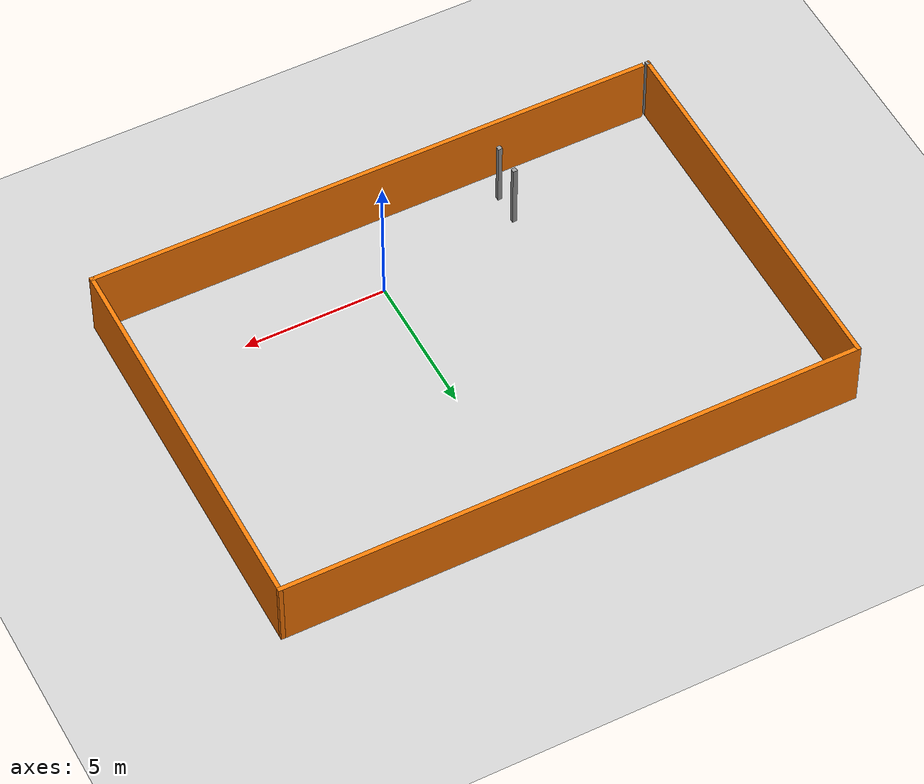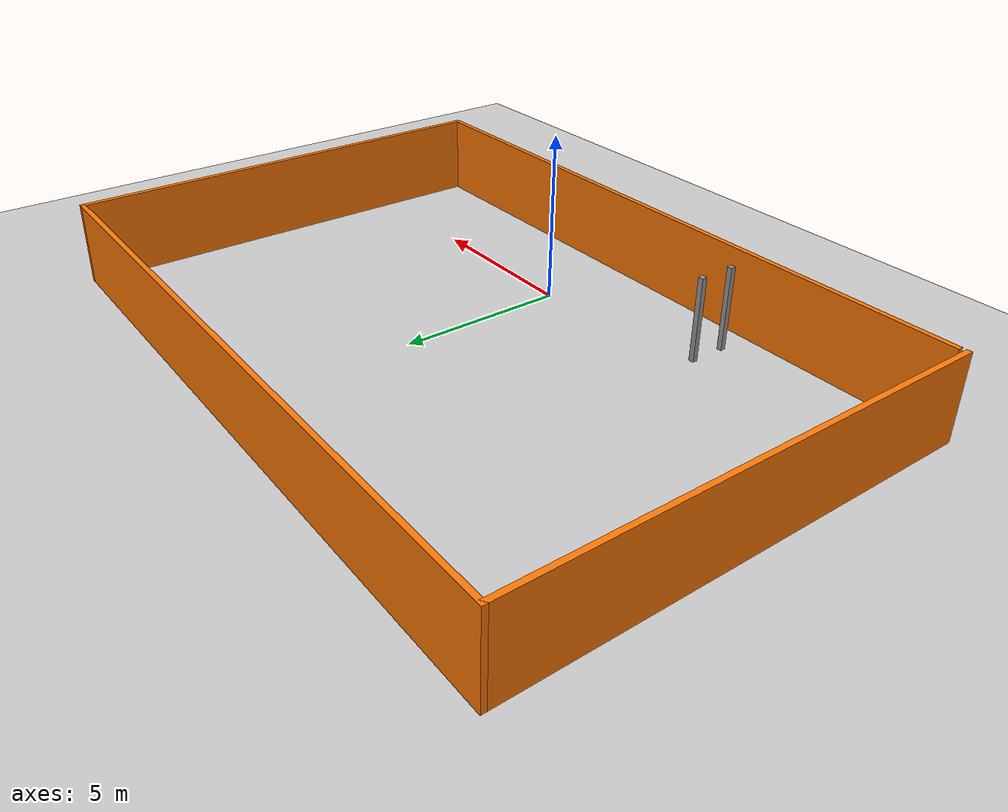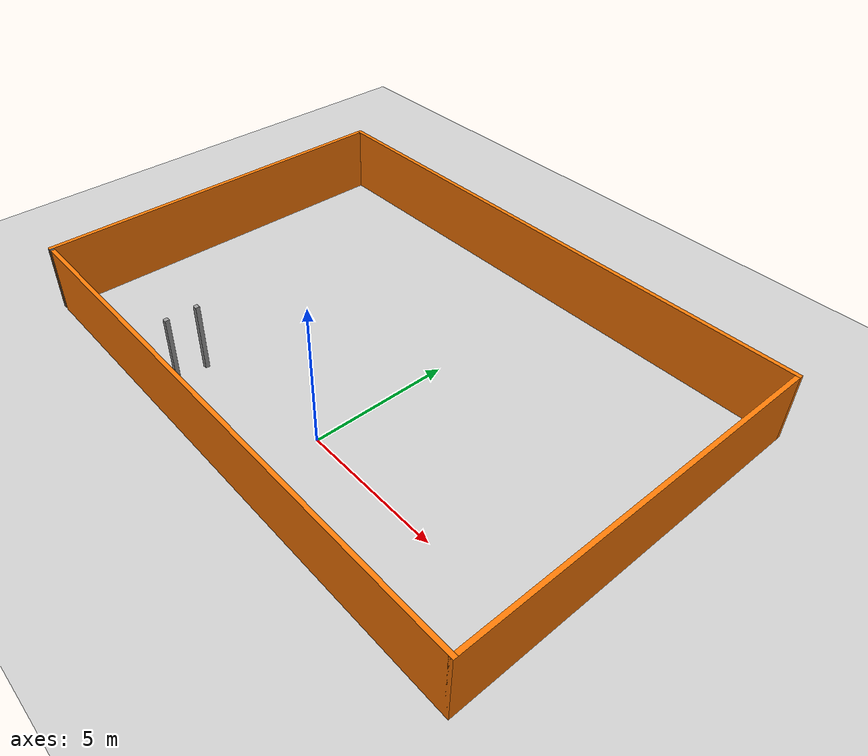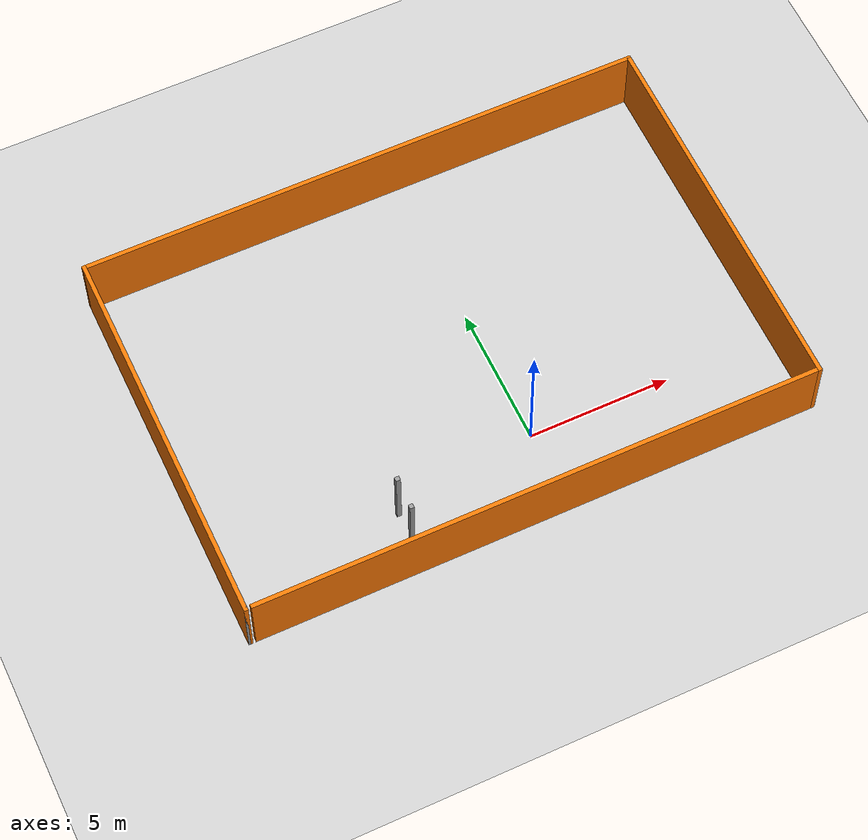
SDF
<sdf version="1.6">
 <world name="default">
  <include><uri>model://ground_plane</uri></include>
  <include><uri>model://sun</uri></include>
  <include><uri>model://tank_test</uri><static>true</static></include>
 </world>
</sdf>

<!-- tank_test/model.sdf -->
<sdf version='1.7'>
  <model name='tank_test'>
    <pose>-1.16513 3.9211 0 0 -0 0</pose>
    <link name='Wall_1'>
      <collision name='Wall_1_Collision'>
        <geometry>
          <box>
            <size>0.16 0.15 2.5</size>
          </box>
        </geometry>
        <pose>0 0 1.25 0 -0 0</pose>
      </collision>
      <visual name='Wall_1_Visual'>
        <pose>0 0 1.25 0 -0 0</pose>
        <geometry>
          <box>
            <size>0.16 0.15 2.5</size>
          </box>
        </geometry>
        <material>
          <script>
            <uri>file://media/materials/scripts/gazebo.material</uri>
            <name>Gazebo/Grey</name>
          </script>
          <ambient>0 0 0 1</ambient>
        </material>
        <meta>
          <layer>0</layer>
        </meta>
      </visual>
      <pose>-3.9491 -4.68542 0 0 -0 0</pose>
    </link>
    <link name='Wall_14'>
      <collision name='Wall_14_Collision'>
        <geometry>
          <box>
            <size>20 0.15 2.5</size>
          </box>
        </geometry>
        <pose>0 0 1.25 0 -0 0</pose>
      </collision>
      <visual name='Wall_14_Visual'>
        <pose>0 0 1.25 0 -0 0</pose>
        <geometry>
          <box>
            <size>20 0.15 2.5</size>
          </box>
        </geometry>
        <material>
          <script>
            <uri>file://media/materials/scripts/gazebo.material</uri>
            <name>Gazebo/Grey</name>
          </script>
          <ambient>0.996078 0.47451 0.0196078 1</ambient>
        </material>
        <meta>
          <layer>0</layer>
        </meta>
      </visual>
      <pose>0.125 -6.8 0 0 -0 0</pose>
    </link>
    <link name='Wall_15'>
      <collision name='Wall_15_Collision'>
        <geometry>
          <box>
            <size>13.75 0.15 2.5</size>
          </box>
        </geometry>
        <pose>0 0 1.25 0 -0 0</pose>
      </collision>
      <visual name='Wall_15_Visual'>
        <pose>0 0 1.25 0 -0 0</pose>
        <geometry>
          <box>
            <size>13.75 0.15 2.5</size>
          </box>
        </geometry>
        <material>
          <script>
            <uri>file://media/materials/scripts/gazebo.material</uri>
            <name>Gazebo/Grey</name>
          </script>
          <ambient>0.996078 0.47451 0.0196078 1</ambient>
        </material>
        <meta>
          <layer>0</layer>
        </meta>
      </visual>
      <pose>10.05 -0 0 0 -0 1.5708</pose>
    </link>
    <link name='Wall_16'>
      <collision name='Wall_16_Collision'>
        <geometry>
          <box>
            <size>20.25 0.15 2.5</size>
          </box>
        </geometry>
        <pose>0 0 1.25 0 -0 0</pose>
      </collision>
      <visual name='Wall_16_Visual'>
        <pose>0 0 1.25 0 -0 0</pose>
        <geometry>
          <box>
            <size>20.25 0.15 2.5</size>
          </box>
        </geometry>
        <material>
          <script>
            <uri>file://media/materials/scripts/gazebo.material</uri>
            <name>Gazebo/Grey</name>
          </script>
          <ambient>0.996078 0.47451 0.0196078 1</ambient>
        </material>
        <meta>
          <layer>0</layer>
        </meta>
      </visual>
      <pose>-0 6.8 0 0 -0 3.14159</pose>
    </link>
    <link name='Wall_17'>
      <collision name='Wall_17_Collision'>
        <geometry>
          <box>
            <size>13.75 0.15 2.5</size>
          </box>
        </geometry>
        <pose>0 0 1.25 0 -0 0</pose>
      </collision>
      <visual name='Wall_17_Visual'>
        <pose>0 0 1.25 0 -0 0</pose>
        <geometry>
          <box>
            <size>13.75 0.15 2.5</size>
          </box>
        </geometry>
        <material>
          <script>
            <uri>file://media/materials/scripts/gazebo.material</uri>
            <name>Gazebo/Grey</name>
          </script>
          <ambient>0.996078 0.47451 0.0196078 1</ambient>
        </material>
        <meta>
          <layer>0</layer>
        </meta>
      </visual>
      <pose>-10.05 -0 0 0 -0 -1.5708</pose>
    </link>
    <link name='Wall_18'>
      <collision name='Wall_18_Collision'>
        <geometry>
          <box>
            <size>0.15 0.15 2.5</size>
          </box>
        </geometry>
        <pose>0 0 1.25 0 -0 0</pose>
      </collision>
      <visual name='Wall_18_Visual'>
        <pose>0 0 1.25 0 -0 0</pose>
        <geometry>
          <box>
            <size>0.15 0.15 2.5</size>
          </box>
        </geometry>
        <material>
          <script>
            <uri>file://media/materials/scripts/gazebo.material</uri>
            <name>Gazebo/Grey</name>
          </script>
          <ambient>1 1 1 1</ambient>
        </material>
        <meta>
          <layer>0</layer>
        </meta>
      </visual>
      <pose>-10.05 -6.8 0 0 -0 0</pose>
    </link>
    <link name='Wall_6'>
      <collision name='Wall_6_Collision'>
        <geometry>
          <box>
            <size>0.15 0.15 2.5</size>
          </box>
        </geometry>
        <pose>0 0 1.25 0 -0 0</pose>
      </collision>
      <visual name='Wall_6_Visual'>
        <pose>0 0 1.25 0 -0 0</pose>
        <geometry>
          <box>
            <size>0.15 0.15 2.5</size>
          </box>
        </geometry>
        <material>
          <script>
            <uri>file://media/materials/scripts/gazebo.material</uri>
            <name>Gazebo/Grey</name>
          </script>
          <ambient>1 1 1 1</ambient>
        </material>
        <meta>
          <layer>0</layer>
        </meta>
      </visual>
      <pose>-3.96142 -5.75181 0 0 -0 0</pose>
    </link>
    <static>1</static>
  </model>
</sdf>
